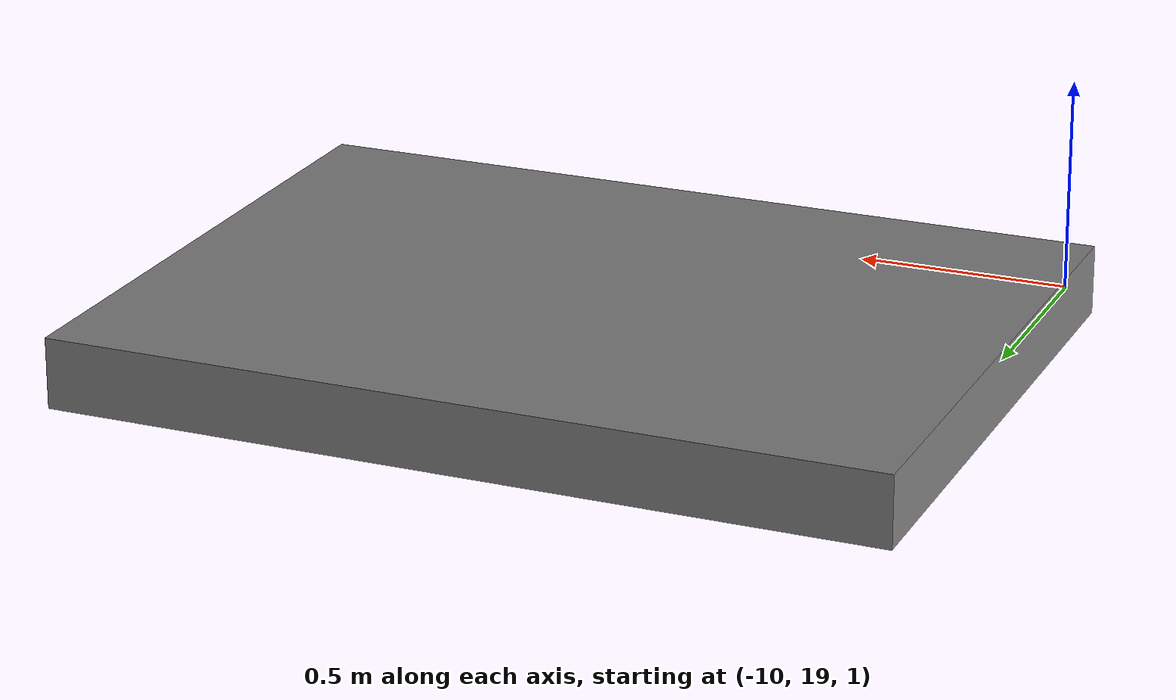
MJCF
<mujoco model="go2 scene">

  <statistic center="0 0 0.1" extent="0.8" />

  <visual>
    <headlight diffuse="0.6 0.6 0.6" ambient="0.3 0.3 0.3" specular="0 0 0" />
    <rgba haze="0.15 0.25 0.35 1" />
    <global azimuth="-130" elevation="-20" />
  </visual>

  <asset>
    <texture type="skybox" builtin="gradient" rgb1="0.3 0.5 0.7" rgb2="0 0 0" width="512" height="3072" />

  </asset>

  <worldbody>
  <geom pos="-9.0 19.5 0.9349999999999998" type="box" size="1 0.75 0.085" quat="1.0 0.0 0.0 0.0" /></worldbody>
</mujoco>
